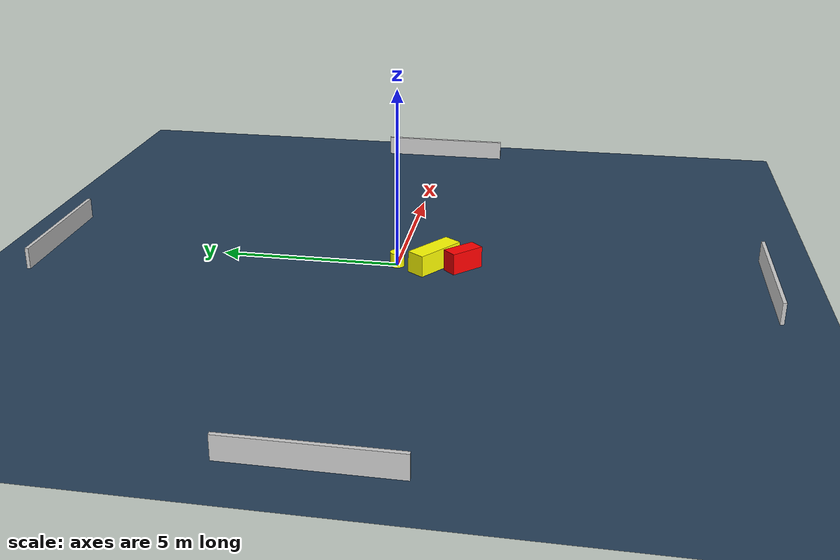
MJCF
<?xml version="1.0" ?>
<mujoco model="generated_environment">
  <option timestep="0.01" integrator="RK4" cone="elliptic"/>
  <default>
    <geom density="1"/>
  </default>
  <asset>
    <texture builtin="gradient" height="3072" name="skybox" rgb1="0.3 0.5 0.7" rgb2="0 0 0" type="skybox" width="512"/>
    <texture builtin="checker" height="300" name="groundplane" rgb1="0.2 0.3 0.4" rgb2="0.1 0.2 0.3" type="2d" width="300"/>
    <material name="groundplane" reflectance="0.2" texrepeat="5 5" texture="groundplane"/>
  </asset>
  <worldbody>
    <light dir="0 0 -1" directional="true" pos="0 0 1.5"/>
    <geom condim="3" friction="0.5 0.005 0.001" material="groundplane" name="floor" pos="0 0 0" size="0 0 0.05" type="plane"/>
    <body name="walls">
      <geom name="wall_1" condim="4" pos="-10.0 0.0 0.3" rgba="0.800000011920929 0.800000011920929 0.800000011920929 1.0" size="0.05 2.0 0.3" type="box"/>
      <geom name="wall_2" condim="4" pos="10.0 0.0 0.3" rgba="0.800000011920929 0.800000011920929 0.800000011920929 1.0" size="0.05 2.0 0.3" type="box"/>
      <geom name="wall_3" condim="4" pos="0.0 -10.0 0.3" rgba="0.800000011920929 0.800000011920929 0.800000011920929 1.0" size="2.0 0.05 0.3" type="box"/>
      <geom name="wall_4" condim="4" pos="0.0 10.0 0.3" rgba="0.800000011920929 0.800000011920929 0.800000011920929 1.0" size="2.0 0.05 0.3" type="box"/>
    </body>
    <body name="robot">
      <joint name="joint_x" type="slide" pos="0 0 0" axis="1 0 0"/>
      <joint name="joint_y" type="slide" pos="0 0 0" axis="0 1 0"/>
      <geom name="robot" type="cylinder" pos="0.0 0.0 0.2" size="0.2 0.2 0.0" mass="5.0" friction="1.0 0.005 0.0001" condim="4" rgba="1.0 1.0 0.0 1.0"/>
    </body>
    <body name="obstacle_1_movable">
      <geom name="obstacle_1_movable" condim="4" pos="0.0676527759381211 -1.0214631174660727 0.3" euler="0 0 324.0730884808085" friction="0.0 0.005 0.001" rgba="1.0 1.0 0.0 1.0" size="0.7516900845563401 0.26713693639914393 0.3" type="box" mass="0.1"/>
      <joint type="free"/>
    </body>
    <body name="obstacle_2_static">
      <geom name="obstacle_2_static" condim="4" pos="0.08834490277386021 -1.81713637177891 0.3" euler="0 0 315.0061692280138" friction="0.0 0.005 0.001" rgba="1.0 0.0 0.0 1.0" size="0.49181014377978166 0.2168594142707613 0.3" type="box"/>
    </body>
  </worldbody>
  <actuator>
    <motor name="actuator_x" joint="joint_x" gear="1" ctrlrange="-1 1"/>
    <motor name="actuator_y" joint="joint_y" gear="1" ctrlrange="-1 1"/>
  </actuator>
</mujoco>
